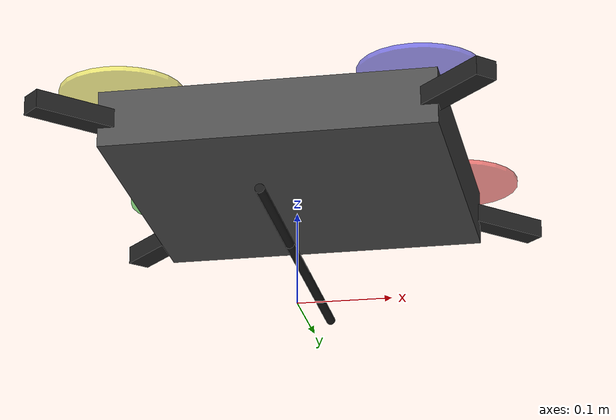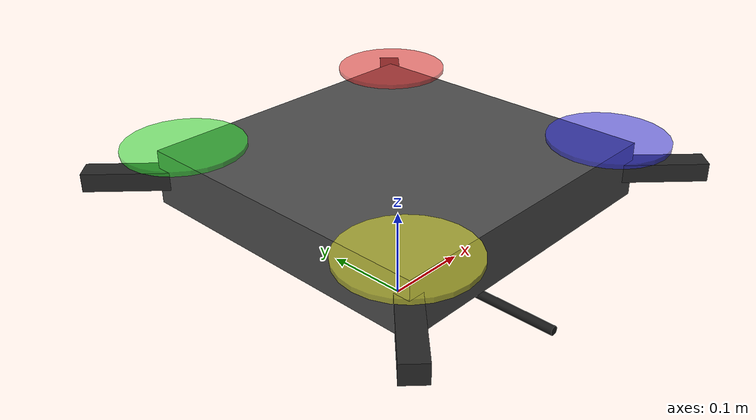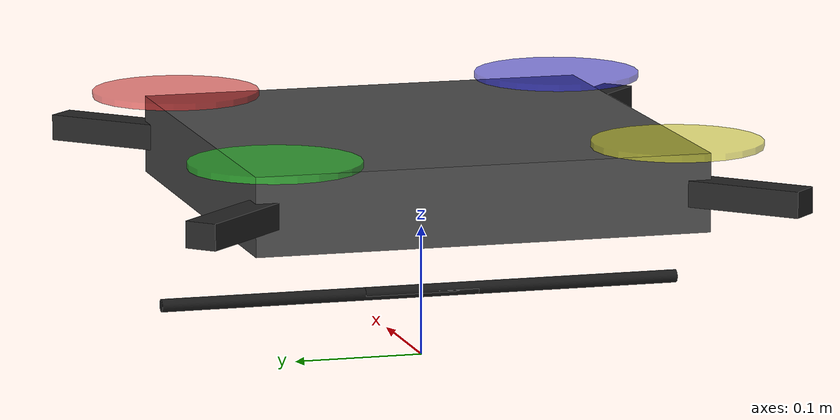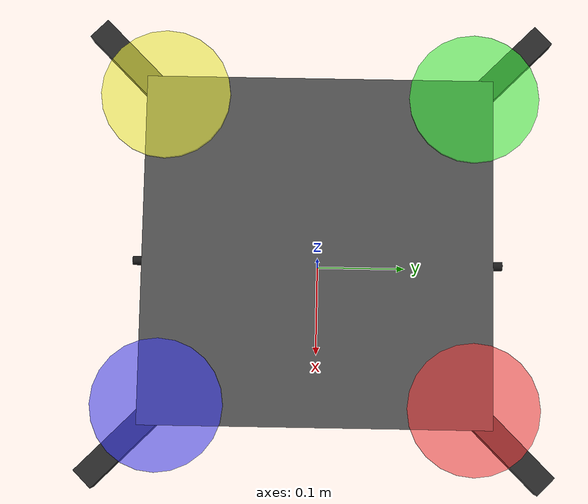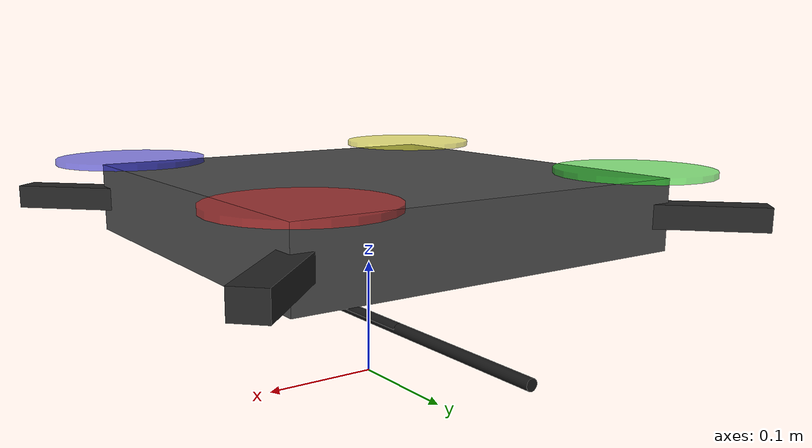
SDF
<?xml version="1.0" ?>
<sdf version="1.9">
  <model name="flyntic_drone">
    <static>false</static>
    <self_collide>false</self_collide>

    <!-- ═══════════════ MAIN BODY ═══════════════ -->
    <link name="base_link">
      <pose>0 0 0.15 0 0 0</pose>
      <inertial>
        <mass>0.45</mass>
        <inertia>
          <ixx>0.005</ixx><ixy>0</ixy><ixz>0</ixz>
          <iyy>0.009</iyy><iyz>0</iyz>
          <izz>0.005</izz>
        </inertia>
      </inertial>

      <!-- Frame collision -->
      <collision name="body_collision">
        <geometry>
          <box><size>0.35 0.35 0.08</size></box>
        </geometry>
      </collision>

      <!-- Frame visual — central body -->
      <visual name="body_visual">
        <geometry>
          <box><size>0.35 0.35 0.06</size></box>
        </geometry>
        <material>
          <ambient>0.2 0.2 0.2 1</ambient>
          <diffuse>0.3 0.3 0.3 1</diffuse>
        </material>
      </visual>

      <!-- Arms (4 diagonal) -->
      <visual name="arm_fl">
        <pose>0.11 0.11 0 0 0 0.785</pose>
        <geometry><box><size>0.34 0.025 0.02</size></box></geometry>
        <material><diffuse>0.15 0.15 0.15 1</diffuse></material>
      </visual>
      <visual name="arm_fr">
        <pose>0.11 -0.11 0 0 0 -0.785</pose>
        <geometry><box><size>0.34 0.025 0.02</size></box></geometry>
        <material><diffuse>0.15 0.15 0.15 1</diffuse></material>
      </visual>
      <visual name="arm_bl">
        <pose>-0.11 0.11 0 0 0 -0.785</pose>
        <geometry><box><size>0.34 0.025 0.02</size></box></geometry>
        <material><diffuse>0.15 0.15 0.15 1</diffuse></material>
      </visual>
      <visual name="arm_br">
        <pose>-0.11 -0.11 0 0 0 0.785</pose>
        <geometry><box><size>0.34 0.025 0.02</size></box></geometry>
        <material><diffuse>0.15 0.15 0.15 1</diffuse></material>
      </visual>

      <!-- Landing gear -->
      <visual name="skid_left">
        <pose>0 0.08 -0.1 1.5708 0 0</pose>
        <geometry><cylinder><radius>0.005</radius><length>0.25</length></cylinder></geometry>
        <material><diffuse>0.1 0.1 0.1 1</diffuse></material>
      </visual>
      <visual name="skid_right">
        <pose>0 -0.08 -0.1 1.5708 0 0</pose>
        <geometry><cylinder><radius>0.005</radius><length>0.25</length></cylinder></geometry>
        <material><diffuse>0.1 0.1 0.1 1</diffuse></material>
      </visual>

      <!-- ── SENSORS ── -->
      <sensor name="imu_sensor" type="imu">
        <always_on>true</always_on>
        <update_rate>200</update_rate>
        <imu>
          <angular_velocity>
            <x><noise><type>gaussian</type><mean>0</mean><stddev>0.001</stddev></noise></x>
            <y><noise><type>gaussian</type><mean>0</mean><stddev>0.001</stddev></noise></y>
            <z><noise><type>gaussian</type><mean>0</mean><stddev>0.001</stddev></noise></z>
          </angular_velocity>
          <linear_acceleration>
            <x><noise><type>gaussian</type><mean>0</mean><stddev>0.01</stddev></noise></x>
            <y><noise><type>gaussian</type><mean>0</mean><stddev>0.01</stddev></noise></y>
            <z><noise><type>gaussian</type><mean>0</mean><stddev>0.01</stddev></noise></z>
          </linear_acceleration>
        </imu>
      </sensor>
    </link>

    <!-- ═══════════════ ROTOR FL (Front Left) ═══════════════ -->
    <link name="rotor_fl">
      <pose relative_to="base_link">0.155 0.155 0.035 0 0 0</pose>
      <inertial>
        <mass>0.025</mass>
        <inertia>
          <ixx>0.00001</ixx><ixy>0</ixy><ixz>0</ixz>
          <iyy>0.00001</iyy><iyz>0</iyz>
          <izz>0.00002</izz>
        </inertia>
      </inertial>
      <visual name="rotor_fl_visual">
        <geometry><cylinder><radius>0.065</radius><length>0.005</length></cylinder></geometry>
        <material><diffuse>0.9 0.2 0.2 0.6</diffuse></material>
      </visual>
      <collision name="rotor_fl_collision">
        <geometry><cylinder><radius>0.065</radius><length>0.005</length></cylinder></geometry>
      </collision>
    </link>

    <joint name="rotor_fl_joint" type="revolute">
      <parent>base_link</parent>
      <child>rotor_fl</child>
      <axis><xyz>0 0 1</xyz>
        <limit><lower>-1e16</lower><upper>1e16</upper></limit>
      </axis>
    </joint>

    <!-- ═══════════════ ROTOR FR (Front Right) ═══════════════ -->
    <link name="rotor_fr">
      <pose relative_to="base_link">0.155 -0.155 0.035 0 0 0</pose>
      <inertial>
        <mass>0.025</mass>
        <inertia>
          <ixx>0.00001</ixx><ixy>0</ixy><ixz>0</ixz>
          <iyy>0.00001</iyy><iyz>0</iyz>
          <izz>0.00002</izz>
        </inertia>
      </inertial>
      <visual name="rotor_fr_visual">
        <geometry><cylinder><radius>0.065</radius><length>0.005</length></cylinder></geometry>
        <material><diffuse>0.2 0.2 0.9 0.6</diffuse></material>
      </visual>
      <collision name="rotor_fr_collision">
        <geometry><cylinder><radius>0.065</radius><length>0.005</length></cylinder></geometry>
      </collision>
    </link>

    <joint name="rotor_fr_joint" type="revolute">
      <parent>base_link</parent>
      <child>rotor_fr</child>
      <axis><xyz>0 0 1</xyz>
        <limit><lower>-1e16</lower><upper>1e16</upper></limit>
      </axis>
    </joint>

    <!-- ═══════════════ ROTOR BL (Back Left) ═══════════════ -->
    <link name="rotor_bl">
      <pose relative_to="base_link">-0.155 0.155 0.035 0 0 0</pose>
      <inertial>
        <mass>0.025</mass>
        <inertia>
          <ixx>0.00001</ixx><ixy>0</ixy><ixz>0</ixz>
          <iyy>0.00001</iyy><iyz>0</iyz>
          <izz>0.00002</izz>
        </inertia>
      </inertial>
      <visual name="rotor_bl_visual">
        <geometry><cylinder><radius>0.065</radius><length>0.005</length></cylinder></geometry>
        <material><diffuse>0.2 0.9 0.2 0.6</diffuse></material>
      </visual>
      <collision name="rotor_bl_collision">
        <geometry><cylinder><radius>0.065</radius><length>0.005</length></cylinder></geometry>
      </collision>
    </link>

    <joint name="rotor_bl_joint" type="revolute">
      <parent>base_link</parent>
      <child>rotor_bl</child>
      <axis><xyz>0 0 1</xyz>
        <limit><lower>-1e16</lower><upper>1e16</upper></limit>
      </axis>
    </joint>

    <!-- ═══════════════ ROTOR BR (Back Right) ═══════════════ -->
    <link name="rotor_br">
      <pose relative_to="base_link">-0.155 -0.155 0.035 0 0 0</pose>
      <inertial>
        <mass>0.025</mass>
        <inertia>
          <ixx>0.00001</ixx><ixy>0</ixy><ixz>0</ixz>
          <iyy>0.00001</iyy><iyz>0</iyz>
          <izz>0.00002</izz>
        </inertia>
      </inertial>
      <visual name="rotor_br_visual">
        <geometry><cylinder><radius>0.065</radius><length>0.005</length></cylinder></geometry>
        <material><diffuse>0.9 0.9 0.2 0.6</diffuse></material>
      </visual>
      <collision name="rotor_br_collision">
        <geometry><cylinder><radius>0.065</radius><length>0.005</length></cylinder></geometry>
      </collision>
    </link>

    <joint name="rotor_br_joint" type="revolute">
      <parent>base_link</parent>
      <child>rotor_br</child>
      <axis><xyz>0 0 1</xyz>
        <limit><lower>-1e16</lower><upper>1e16</upper></limit>
      </axis>
    </joint>

    <!-- ═══════════════ PLUGINS ═══════════════ -->

    <!-- Multicopter motor model (applies forces based on rotor velocity commands) -->
    <plugin filename="gz-sim-multicopter-motor-model-system"
            name="gz::sim::systems::MulticopterMotorModel">
      <robotNamespace>flyntic</robotNamespace>
      <jointName>rotor_fl_joint</jointName>
      <linkName>rotor_fl</linkName>
      <turningDirection>ccw</turningDirection>
      <timeConstantUp>0.0125</timeConstantUp>
      <timeConstantDown>0.025</timeConstantDown>
      <maxRotVelocity>1500</maxRotVelocity>
      <motorConstant>5.84e-06</motorConstant>
      <momentConstant>0.06</momentConstant>
      <commandSubTopic>command/motor_speed</commandSubTopic>
      <motorNumber>0</motorNumber>
      <rotorDragCoefficient>2.0673e-04</rotorDragCoefficient>
      <rollingMomentCoefficient>1e-06</rollingMomentCoefficient>
      <motorSpeedPubTopic>motor_speed/0</motorSpeedPubTopic>
      <rotorVelocitySlowdownSim>10</rotorVelocitySlowdownSim>
      <motorType>velocity</motorType>
    </plugin>

    <plugin filename="gz-sim-multicopter-motor-model-system"
            name="gz::sim::systems::MulticopterMotorModel">
      <robotNamespace>flyntic</robotNamespace>
      <jointName>rotor_fr_joint</jointName>
      <linkName>rotor_fr</linkName>
      <turningDirection>cw</turningDirection>
      <timeConstantUp>0.0125</timeConstantUp>
      <timeConstantDown>0.025</timeConstantDown>
      <maxRotVelocity>1500</maxRotVelocity>
      <motorConstant>5.84e-06</motorConstant>
      <momentConstant>0.06</momentConstant>
      <commandSubTopic>command/motor_speed</commandSubTopic>
      <motorNumber>1</motorNumber>
      <rotorDragCoefficient>2.0673e-04</rotorDragCoefficient>
      <rollingMomentCoefficient>1e-06</rollingMomentCoefficient>
      <motorSpeedPubTopic>motor_speed/1</motorSpeedPubTopic>
      <rotorVelocitySlowdownSim>10</rotorVelocitySlowdownSim>
      <motorType>velocity</motorType>
    </plugin>

    <plugin filename="gz-sim-multicopter-motor-model-system"
            name="gz::sim::systems::MulticopterMotorModel">
      <robotNamespace>flyntic</robotNamespace>
      <jointName>rotor_bl_joint</jointName>
      <linkName>rotor_bl</linkName>
      <turningDirection>cw</turningDirection>
      <timeConstantUp>0.0125</timeConstantUp>
      <timeConstantDown>0.025</timeConstantDown>
      <maxRotVelocity>1500</maxRotVelocity>
      <motorConstant>5.84e-06</motorConstant>
      <momentConstant>0.06</momentConstant>
      <commandSubTopic>command/motor_speed</commandSubTopic>
      <motorNumber>2</motorNumber>
      <rotorDragCoefficient>2.0673e-04</rotorDragCoefficient>
      <rollingMomentCoefficient>1e-06</rollingMomentCoefficient>
      <motorSpeedPubTopic>motor_speed/2</motorSpeedPubTopic>
      <rotorVelocitySlowdownSim>10</rotorVelocitySlowdownSim>
      <motorType>velocity</motorType>
    </plugin>

    <plugin filename="gz-sim-multicopter-motor-model-system"
            name="gz::sim::systems::MulticopterMotorModel">
      <robotNamespace>flyntic</robotNamespace>
      <jointName>rotor_br_joint</jointName>
      <linkName>rotor_br</linkName>
      <turningDirection>ccw</turningDirection>
      <timeConstantUp>0.0125</timeConstantUp>
      <timeConstantDown>0.025</timeConstantDown>
      <maxRotVelocity>1500</maxRotVelocity>
      <motorConstant>5.84e-06</motorConstant>
      <momentConstant>0.06</momentConstant>
      <commandSubTopic>command/motor_speed</commandSubTopic>
      <motorNumber>3</motorNumber>
      <rotorDragCoefficient>2.0673e-04</rotorDragCoefficient>
      <rollingMomentCoefficient>1e-06</rollingMomentCoefficient>
      <motorSpeedPubTopic>motor_speed/3</motorSpeedPubTopic>
      <rotorVelocitySlowdownSim>10</rotorVelocitySlowdownSim>
      <motorType>velocity</motorType>
    </plugin>

    <!-- Multicopter velocity control plugin -->
    <plugin filename="gz-sim-multicopter-control-system"
            name="gz::sim::systems::MulticopterVelocityControl">
      <robotNamespace>flyntic</robotNamespace>
      <commandSubTopic>cmd_vel</commandSubTopic>
      <enableSubTopic>enable</enableSubTopic>
      <comLinkName>base_link</comLinkName>

      <velocityGain>3.0 3.0 3.0</velocityGain>
      <attitudeGain>0.4 0.6 0.25</attitudeGain>
      <angularRateGain>0.1 0.15 0.05</angularRateGain>
      <maximumLinearAcceleration>3 3 5</maximumLinearAcceleration>

      <rotorConfiguration>
        <rotor>
          <jointName>rotor_fl_joint</jointName>
          <forceConstant>5.84e-06</forceConstant>
          <momentConstant>0.06</momentConstant>
          <direction>1</direction>
        </rotor>
        <rotor>
          <jointName>rotor_fr_joint</jointName>
          <forceConstant>5.84e-06</forceConstant>
          <momentConstant>0.06</momentConstant>
          <direction>-1</direction>
        </rotor>
        <rotor>
          <jointName>rotor_bl_joint</jointName>
          <forceConstant>5.84e-06</forceConstant>
          <momentConstant>0.06</momentConstant>
          <direction>-1</direction>
        </rotor>
        <rotor>
          <jointName>rotor_br_joint</jointName>
          <forceConstant>5.84e-06</forceConstant>
          <momentConstant>0.06</momentConstant>
          <direction>1</direction>
        </rotor>
      </rotorConfiguration>
    </plugin>

    <!-- Pose publisher (for bridge to read) -->
    <plugin filename="gz-sim-pose-publisher-system"
            name="gz::sim::systems::PosePublisher">
      <publish_link_pose>true</publish_link_pose>
      <publish_nested_model_pose>true</publish_nested_model_pose>
      <update_frequency>50</update_frequency>
    </plugin>

    <!-- Odometry publisher -->
    <plugin filename="gz-sim-odometry-publisher-system"
            name="gz::sim::systems::OdometryPublisher">
      <odom_frame>odom</odom_frame>
      <robot_base_frame>base_link</robot_base_frame>
      <odom_publish_frequency>50</odom_publish_frequency>
    </plugin>

    <!-- IMU system plugin -->
    <plugin filename="gz-sim-imu-system"
            name="gz::sim::systems::Imu">
    </plugin>

  </model>
</sdf>
